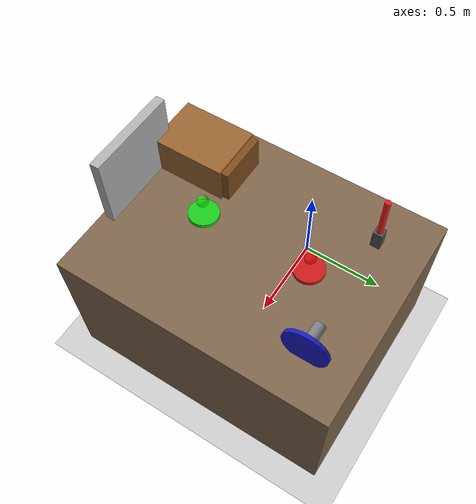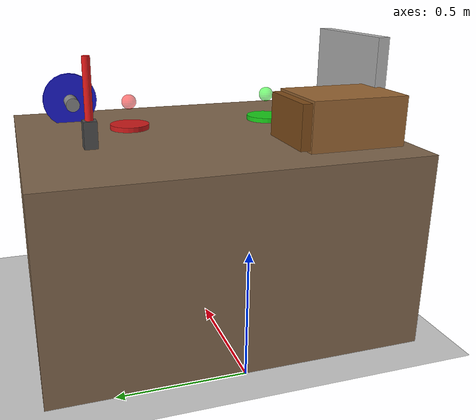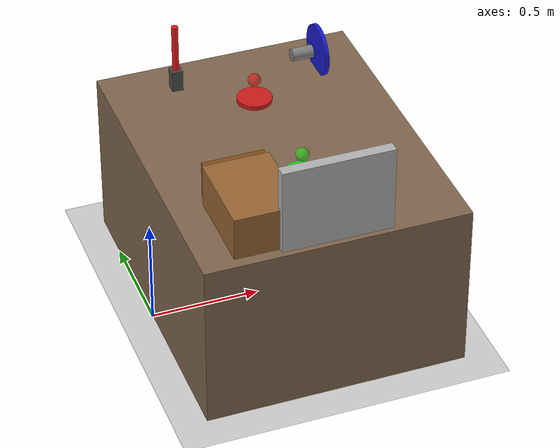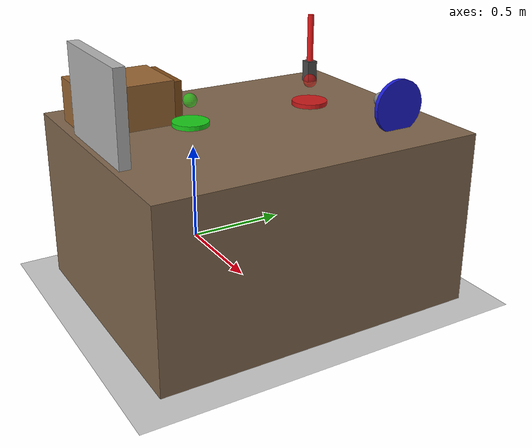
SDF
<?xml version="1.0" ?>
<sdf version="1.8">
  <world name="whole_arm_manipulation_workspace">

    <!-- Physics -->
    <physics name="1ms" type="ignored">
      <max_step_size>0.001</max_step_size>
      <real_time_factor>1.0</real_time_factor>
    </physics>

    <!-- Plugins -->
    <plugin filename="gz-sim-physics-system" name="gz::sim::systems::Physics"/>
    <plugin filename="gz-sim-user-commands-system" name="gz::sim::systems::UserCommands"/>
    <plugin filename="gz-sim-scene-broadcaster-system" name="gz::sim::systems::SceneBroadcaster"/>
    <plugin filename="gz-sim-contact-system" name="gz::sim::systems::Contact"/>

    <!-- Lighting -->
    <light type="directional" name="sun">
      <cast_shadows>true</cast_shadows>
      <pose>0 0 10 0 0 0</pose>
      <diffuse>0.8 0.8 0.8 1</diffuse>
      <specular>0.2 0.2 0.2 1</specular>
      <attenuation>
        <range>1000</range>
        <constant>0.9</constant>
        <linear>0.01</linear>
        <quadratic>0.001</quadratic>
      </attenuation>
      <direction>-0.5 0.1 -0.9</direction>
    </light>

    <!-- Ground Plane -->
    <model name="ground_plane">
      <static>true</static>
      <link name="link">
        <collision name="collision">
          <geometry>
            <plane>
              <normal>0 0 1</normal>
            </plane>
          </geometry>
        </collision>
        <visual name="visual">
          <geometry>
            <plane>
              <normal>0 0 1</normal>
              <size>100 100</size>
            </plane>
          </geometry>
          <material>
            <ambient>0.8 0.8 0.8 1</ambient>
            <diffuse>0.8 0.8 0.8 1</diffuse>
            <specular>0.8 0.8 0.8 1</specular>
          </material>
        </visual>
      </link>
    </model>

    <!-- Workbench/Table -->
    <model name="workbench">
      <static>true</static>
      <pose>0.6 0 0.4 0 0 0</pose>
      <link name="link">
        <collision name="collision">
          <geometry>
            <box>
              <size>1.2 1.5 0.8</size>
            </box>
          </geometry>
        </collision>
        <visual name="visual">
          <geometry>
            <box>
              <size>1.2 1.5 0.8</size>
            </box>
          </geometry>
          <material>
            <ambient>0.5 0.4 0.3 1</ambient>
            <diffuse>0.5 0.4 0.3 1</diffuse>
          </material>
        </visual>
      </link>
    </model>

    <!-- Large Button 1 (Red) -->
    <model name="button_red">
      <pose>0.6 0.3 0.85 0 0 0</pose>
      <link name="button_base">
        <collision name="collision">
          <geometry>
            <cylinder>
              <radius>0.08</radius>
              <length>0.02</length>
            </cylinder>
          </geometry>
        </collision>
        <visual name="visual">
          <geometry>
            <cylinder>
              <radius>0.08</radius>
              <length>0.02</length>
            </cylinder>
          </geometry>
          <material>
            <ambient>0.8 0.1 0.1 1</ambient>
            <diffuse>0.8 0.1 0.1 1</diffuse>
          </material>
        </visual>
        <inertial>
          <mass>0.2</mass>
          <inertia>
            <ixx>0.0001</ixx>
            <iyy>0.0001</iyy>
            <izz>0.0001</izz>
          </inertia>
        </inertial>
      </link>
      <joint name="button_joint" type="prismatic">
        <parent>world</parent>
        <child>button_base</child>
        <axis>
          <xyz>0 0 1</xyz>
          <limit>
            <lower>-0.02</lower>
            <upper>0</upper>
          </limit>
          <dynamics>
            <damping>5.0</damping>
            <spring_stiffness>100.0</spring_stiffness>
          </dynamics>
        </axis>
      </joint>
    </model>

    <!-- Large Button 2 (Green) -->
    <model name="button_green">
      <pose>0.6 -0.3 0.85 0 0 0</pose>
      <link name="button_base">
        <collision name="collision">
          <geometry>
            <cylinder>
              <radius>0.08</radius>
              <length>0.02</length>
            </cylinder>
          </geometry>
        </collision>
        <visual name="visual">
          <geometry>
            <cylinder>
              <radius>0.08</radius>
              <length>0.02</length>
            </cylinder>
          </geometry>
          <material>
            <ambient>0.1 0.8 0.1 1</ambient>
            <diffuse>0.1 0.8 0.1 1</diffuse>
          </material>
        </visual>
        <inertial>
          <mass>0.2</mass>
          <inertia>
            <ixx>0.0001</ixx>
            <iyy>0.0001</iyy>
            <izz>0.0001</izz>
          </inertia>
        </inertial>
      </link>
      <joint name="button_joint" type="prismatic">
        <parent>world</parent>
        <child>button_base</child>
        <axis>
          <xyz>0 0 1</xyz>
          <limit>
            <lower>-0.02</lower>
            <upper>0</upper>
          </limit>
          <dynamics>
            <damping>5.0</damping>
            <spring_stiffness>100.0</spring_stiffness>
          </dynamics>
        </axis>
      </joint>
    </model>

    <!-- Lever/Switch -->
    <model name="lever">
      <pose>0.3 0.5 0.9 0 0 0</pose>
      <link name="lever_base">
        <pose>0 0 0 0 0 0</pose>
        <collision name="collision">
          <geometry>
            <box>
              <size>0.05 0.05 0.1</size>
            </box>
          </geometry>
        </collision>
        <visual name="visual">
          <geometry>
            <box>
              <size>0.05 0.05 0.1</size>
            </box>
          </geometry>
          <material>
            <ambient>0.3 0.3 0.3 1</ambient>
            <diffuse>0.3 0.3 0.3 1</diffuse>
          </material>
        </visual>
        <inertial>
          <mass>0.1</mass>
        </inertial>
      </link>
      <link name="lever_arm">
        <pose>0 0 0.15 0 0 0</pose>
        <collision name="collision">
          <geometry>
            <cylinder>
              <radius>0.015</radius>
              <length>0.25</length>
            </cylinder>
          </geometry>
        </collision>
        <visual name="visual">
          <geometry>
            <cylinder>
              <radius>0.015</radius>
              <length>0.25</length>
            </cylinder>
          </geometry>
          <material>
            <ambient>0.9 0.1 0.1 1</ambient>
            <diffuse>0.9 0.1 0.1 1</diffuse>
          </material>
        </visual>
        <inertial>
          <mass>0.2</mass>
        </inertial>
      </link>
      <joint name="lever_base_joint" type="fixed">
        <parent>world</parent>
        <child>lever_base</child>
      </joint>
      <joint name="lever_joint" type="revolute">
        <parent>lever_base</parent>
        <child>lever_arm</child>
        <axis>
          <xyz>1 0 0</xyz>
          <limit>
            <lower>-0.785</lower>
            <upper>0.785</upper>
          </limit>
          <dynamics>
            <damping>0.5</damping>
            <friction>0.1</friction>
          </dynamics>
        </axis>
      </joint>
    </model>

    <!-- Valve Wheel -->
    <model name="valve">
      <pose>0.9 0.5 0.9 0 1.57 0</pose>
      <link name="valve_base">
        <pose>0 0 0 0 0 0</pose>
        <collision name="collision">
          <geometry>
            <cylinder>
              <radius>0.03</radius>
              <length>0.1</length>
            </cylinder>
          </geometry>
        </collision>
        <visual name="visual">
          <geometry>
            <cylinder>
              <radius>0.03</radius>
              <length>0.1</length>
            </cylinder>
          </geometry>
          <material>
            <ambient>0.5 0.5 0.5 1</ambient>
            <diffuse>0.5 0.5 0.5 1</diffuse>
          </material>
        </visual>
        <inertial>
          <mass>0.3</mass>
        </inertial>
      </link>
      <link name="valve_wheel">
        <pose>0 0 0.08 0 0 0</pose>
        <collision name="collision">
          <geometry>
            <cylinder>
              <radius>0.12</radius>
              <length>0.02</length>
            </cylinder>
          </geometry>
        </collision>
        <visual name="visual">
          <geometry>
            <cylinder>
              <radius>0.12</radius>
              <length>0.02</length>
            </cylinder>
          </geometry>
          <material>
            <ambient>0.1 0.1 0.8 1</ambient>
            <diffuse>0.1 0.1 0.8 1</diffuse>
          </material>
        </visual>
        <inertial>
          <mass>0.5</mass>
          <inertia>
            <ixx>0.001</ixx>
            <iyy>0.001</iyy>
            <izz>0.002</izz>
          </inertia>
        </inertial>
      </link>
      <joint name="valve_base_joint" type="fixed">
        <parent>world</parent>
        <child>valve_base</child>
      </joint>
      <joint name="valve_joint" type="revolute">
        <parent>valve_base</parent>
        <child>valve_wheel</child>
        <axis>
          <xyz>0 0 1</xyz>
          <limit>
            <lower>-10000</lower>
            <upper>10000</upper>
          </limit>
          <dynamics>
            <damping>0.3</damping>
            <friction>0.2</friction>
          </dynamics>
        </axis>
      </joint>
    </model>

    <!-- Sliding Door -->
    <model name="sliding_door">
      <pose>0.6 -0.7 0.9 0 0 0</pose>
      <link name="door_frame">
        <collision name="collision">
          <geometry>
            <box>
              <size>0.5 0.05 0.6</size>
            </box>
          </geometry>
        </collision>
        <visual name="visual">
          <geometry>
            <box>
              <size>0.5 0.05 0.6</size>
            </box>
          </geometry>
          <material>
            <ambient>0.7 0.7 0.7 1</ambient>
            <diffuse>0.7 0.7 0.7 1</diffuse>
          </material>
        </visual>
        <inertial>
          <mass>2.0</mass>
        </inertial>
      </link>
      <joint name="door_slide_joint" type="prismatic">
        <parent>world</parent>
        <child>door_frame</child>
        <axis>
          <xyz>1 0 0</xyz>
          <limit>
            <lower>0</lower>
            <upper>0.4</upper>
          </limit>
          <dynamics>
            <damping>2.0</damping>
            <friction>1.0</friction>
          </dynamics>
        </axis>
      </joint>
    </model>

    <!-- Drawer -->
    <model name="drawer">
      <pose>0.3 -0.5 0.9 0 0 0</pose>
      <link name="drawer_cabinet">
        <collision name="collision">
          <geometry>
            <box>
              <size>0.3 0.4 0.2</size>
            </box>
          </geometry>
        </collision>
        <visual name="visual">
          <geometry>
            <box>
              <size>0.3 0.4 0.2</size>
            </box>
          </geometry>
          <material>
            <ambient>0.6 0.4 0.2 1</ambient>
            <diffuse>0.6 0.4 0.2 1</diffuse>
          </material>
        </visual>
        <inertial>
          <mass>3.0</mass>
        </inertial>
      </link>
      <link name="drawer_front">
        <pose>0 0.22 0 0 0 0</pose>
        <collision name="collision">
          <geometry>
            <box>
              <size>0.28 0.04 0.18</size>
            </box>
          </geometry>
        </collision>
        <visual name="visual">
          <geometry>
            <box>
              <size>0.28 0.04 0.18</size>
            </box>
          </geometry>
          <material>
            <ambient>0.5 0.3 0.1 1</ambient>
            <diffuse>0.5 0.3 0.1 1</diffuse>
          </material>
        </visual>
        <inertial>
          <mass>0.5</mass>
        </inertial>
      </link>
      <joint name="drawer_cabinet_joint" type="fixed">
        <parent>world</parent>
        <child>drawer_cabinet</child>
      </joint>
      <joint name="drawer_slide_joint" type="prismatic">
        <parent>drawer_cabinet</parent>
        <child>drawer_front</child>
        <axis>
          <xyz>0 1 0</xyz>
          <limit>
            <lower>0</lower>
            <upper>0.25</upper>
          </limit>
          <dynamics>
            <damping>1.5</damping>
            <friction>0.8</friction>
          </dynamics>
        </axis>
      </joint>
    </model>

    <!-- Target markers -->
    <model name="target_sphere_1">
      <static>true</static>
      <pose>0.6 0.3 0.95 0 0 0</pose>
      <link name="link">
        <visual name="visual">
          <geometry>
            <sphere>
              <radius>0.03</radius>
            </sphere>
          </geometry>
          <material>
            <ambient>1 0 0 0.5</ambient>
            <diffuse>1 0 0 0.5</diffuse>
          </material>
        </visual>
      </link>
    </model>

    <model name="target_sphere_2">
      <static>true</static>
      <pose>0.6 -0.3 0.95 0 0 0</pose>
      <link name="link">
        <visual name="visual">
          <geometry>
            <sphere>
              <radius>0.03</radius>
            </sphere>
          </geometry>
          <material>
            <ambient>0 1 0 0.5</ambient>
            <diffuse>0 1 0 0.5</diffuse>
          </material>
        </visual>
      </link>
    </model>

  </world>
</sdf>
